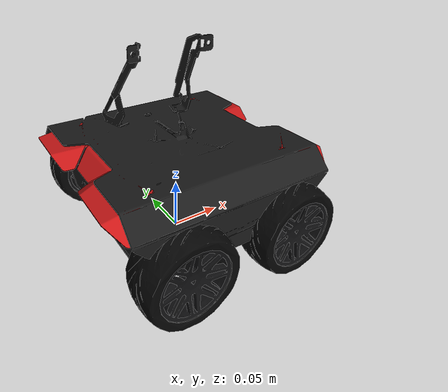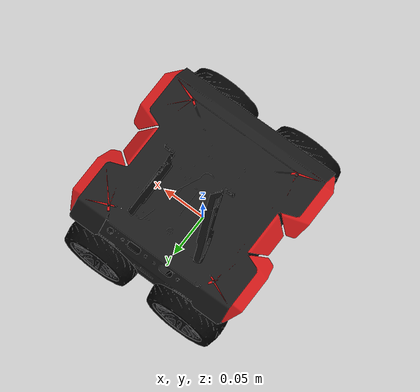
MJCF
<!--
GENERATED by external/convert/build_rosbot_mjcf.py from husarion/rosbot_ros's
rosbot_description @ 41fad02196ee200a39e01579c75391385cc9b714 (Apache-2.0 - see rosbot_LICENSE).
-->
<mujoco model="rosbot">
  <compiler angle="radian" meshdir="meshes" autolimits="true"/>

  <default>
    <default class="rosbot">
      <default class="visual">
        <geom type="mesh" contype="0" conaffinity="0" group="2"/>
      </default>
      <default class="collision">
        <geom type="box" group="3" rgba="0.6 0.1 0.1 0.35"/>
      </default>
      <default class="wheel_collision">
        <geom type="cylinder" group="3" rgba="0.1 0.1 0.1 0.4" quat="0.7071068 0.7071068 0 0"
              friction="1.0 0.005 0.0001"/>
      </default>
      <default class="wheel">
        <joint axis="0 1 0" damping="0.01" armature="0.001"/>
      </default>
    </default>
  </default>

  <asset>
    <material name="body_black" rgba="0.102 0.102 0.102 1"/>
    <material name="fenders_red" rgba="0.7843 0.0863 0.0863 1"/>
    <material name="rim_metallic" rgba="0.06 0.06 0.065 1"/>
    <material name="tire_rubber" rgba="0.018 0.018 0.018 1"/>
    <mesh file="body__body_black.obj"/>
    <mesh file="body__fenders_red.obj"/>
    <mesh file="wheel_l__rim_metallic.obj"/>
    <mesh file="wheel_l__tire_rubber.obj"/>
    <mesh file="wheel_r__rim_metallic.obj"/>
    <mesh file="wheel_r__tire_rubber.obj"/>
  </asset>

  <worldbody>
    <!-- base_link: the URDF root, at ground level (the wheels' 0.0425 m radius lifts body_link to
         its own height). freejoint makes the robot mobile; spawn_robot places it. -->
    <body name="base_link" childclass="rosbot">
      <freejoint name="base_free"/>
      <site name="base_imu" pos="0 0 0" size="0.01" rgba="0 0 0 0"/>
      <body name="body_link" pos="0 0 0.0425">
        <inertial pos="0.0 0.0 0.02" mass="1.728" diaginertia="0.004162 0.00651 0.008828"/>
        <geom class="visual" mesh="body__body_black" material="body_black" pos="0 0 -0.0173"/>
        <geom class="visual" mesh="body__fenders_red" material="fenders_red" pos="0 0 -0.0173"/>

        <geom class="collision" size="0.0985 0.075 0.04" pos="0 0 0.02"/>
      <body name="fl_wheel_link" pos="0.053 0.096 0.0">
        <inertial pos="0 0 0" mass="0.074" diaginertia="4.1e-05 6.7e-05 4.1e-05"/>
        <joint name="fl_wheel_joint" class="wheel"/>
        <geom class="visual" mesh="wheel_l__rim_metallic" material="rim_metallic"/>
        <geom class="visual" mesh="wheel_l__tire_rubber" material="tire_rubber"/>
        <geom class="wheel_collision" name="fl_wheel_geom" size="0.0425 0.018"/>
      </body>
      <body name="fr_wheel_link" pos="0.053 -0.096 0.0">
        <inertial pos="0 0 0" mass="0.074" diaginertia="4.1e-05 6.7e-05 4.1e-05"/>
        <joint name="fr_wheel_joint" class="wheel"/>
        <geom class="visual" mesh="wheel_r__rim_metallic" material="rim_metallic"/>
        <geom class="visual" mesh="wheel_r__tire_rubber" material="tire_rubber"/>
        <geom class="wheel_collision" name="fr_wheel_geom" size="0.0425 0.018"/>
      </body>
      <body name="rl_wheel_link" pos="-0.053 0.096 0.0">
        <inertial pos="0 0 0" mass="0.074" diaginertia="4.1e-05 6.7e-05 4.1e-05"/>
        <joint name="rl_wheel_joint" class="wheel"/>
        <geom class="visual" mesh="wheel_l__rim_metallic" material="rim_metallic"/>
        <geom class="visual" mesh="wheel_l__tire_rubber" material="tire_rubber"/>
        <geom class="wheel_collision" name="rl_wheel_geom" size="0.0425 0.018"/>
      </body>
      <body name="rr_wheel_link" pos="-0.053 -0.096 0.0">
        <inertial pos="0 0 0" mass="0.074" diaginertia="4.1e-05 6.7e-05 4.1e-05"/>
        <joint name="rr_wheel_joint" class="wheel"/>
        <geom class="visual" mesh="wheel_r__rim_metallic" material="rim_metallic"/>
        <geom class="visual" mesh="wheel_r__tire_rubber" material="tire_rubber"/>
        <geom class="wheel_collision" name="rr_wheel_geom" size="0.0425 0.018"/>
      </body>
      </body>
    </body>
  </worldbody>

  <contact>
    <pair geom1="fl_wheel_geom" geom2="floor" condim="3" solref="0.02 1" friction="1.0 1.0 0.005 0.0001 0.0001"/>
    <pair geom1="fr_wheel_geom" geom2="floor" condim="3" solref="0.02 1" friction="1.0 1.0 0.005 0.0001 0.0001"/>
    <pair geom1="rl_wheel_geom" geom2="floor" condim="3" solref="0.02 1" friction="1.0 1.0 0.005 0.0001 0.0001"/>
    <pair geom1="rr_wheel_geom" geom2="floor" condim="3" solref="0.02 1" friction="1.0 1.0 0.005 0.0001 0.0001"/>
  </contact>

  <actuator>
    <velocity name="fl_wheel_motor" joint="fl_wheel_joint" kv="2.0" ctrlrange="-27 27" forcerange="-3 3"/>
    <velocity name="fr_wheel_motor" joint="fr_wheel_joint" kv="2.0" ctrlrange="-27 27" forcerange="-3 3"/>
    <velocity name="rl_wheel_motor" joint="rl_wheel_joint" kv="2.0" ctrlrange="-27 27" forcerange="-3 3"/>
    <velocity name="rr_wheel_motor" joint="rr_wheel_joint" kv="2.0" ctrlrange="-27 27" forcerange="-3 3"/>
  </actuator>

  <keyframe>
    <!-- base_link is at ground level; spawn a hair above so the wheels settle rather than interpenetrate. -->
    <key name="home" qpos="0 0 0.002 1 0 0 0  0 0 0 0"/>
  </keyframe>
</mujoco>
